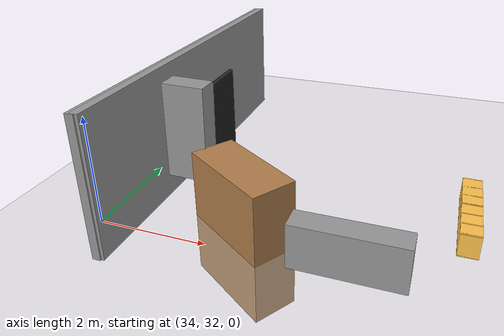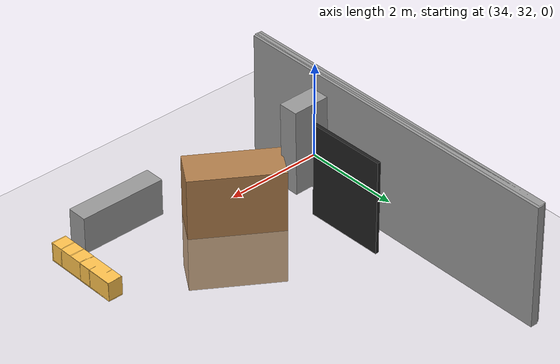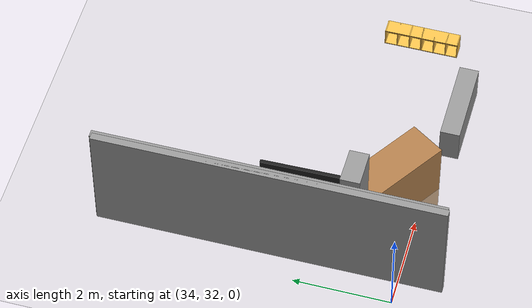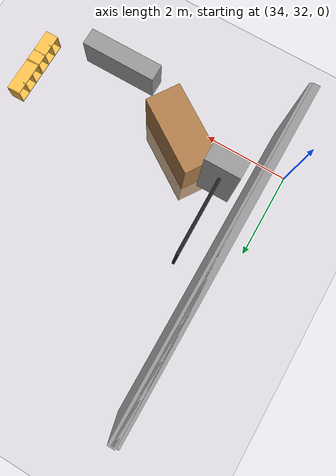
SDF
<sdf version="1.6">
 <world name="default">
  <model name="ground_plane">
   <static>1</static>
   <link name="link">
    <collision name="collision">
     <geometry><plane><normal>0 0 1</normal><size>100 100</size></plane></geometry>
     <surface><friction><ode><mu>100</mu><mu2>50</mu2></ode></friction></surface>
    </collision>
    <visual name="visual">
     <cast_shadows>0</cast_shadows>
     <geometry><plane><normal>0 0 1</normal><size>100 100</size></plane></geometry>
     <material>
      <script><uri>file://media/materials/scripts/gazebo.material</uri><name>Gazebo/Grey</name></script>
     </material>
    </visual>
   </link>
  </model>
  <model name="CVSSP">
   <pose>23.8714 24.094 0 0 -0 0</pose>
   <link name="Wall_53">
    <collision name="Wall_53_Collision">
     <geometry><box><size>7.09358 0.15 2.5</size></box></geometry>
     <pose>0 0 1.25 0 -0 0</pose>
    </collision>
    <visual name="Wall_53_Visual">
     <pose>0 0 1.25 0 -0 0</pose>
     <geometry><box><size>7.09358 0.15 2.5</size></box></geometry>
     <material>
      <script><uri>file://media/materials/scripts/gazebo.material</uri><name>Gazebo/Grey</name></script>
      <ambient>1 1 1 1</ambient>
     </material>
    </visual>
    <pose>10.7501 10.5821 0 0 0 -1.5708</pose>
   </link>
   <link name="Wall_60">
    <collision name="Wall_60_Collision">
     <geometry><box><size>7.09041 0.15 2.5</size></box></geometry>
     <pose>0 0 1.25 0 -0 0</pose>
    </collision>
    <visual name="Wall_60_Visual">
     <pose>0 0 1.25 0 -0 0</pose>
     <geometry><box><size>7.09041 0.15 2.5</size></box></geometry>
     <material>
      <script><uri>file://media/materials/scripts/gazebo.material</uri><name>Gazebo/Grey</name></script>
      <ambient>0.588235 0.588235 0.588235 1</ambient>
     </material>
    </visual>
    <pose>10.6949 10.5553 0 0 0 -1.57007</pose>
   </link>
   <static>1</static>
  </model>
  <model name="plastic_box_0_clone_0_clone">
   <link name="Wall">
    <pose>0 0 0.1985 0 -0 0</pose>
    <inertial>
     <mass>5</mass>
     <inertia><ixx>0.1022</ixx><iyy>0.4107</iyy><izz>0.3815</izz><ixy>0</ixy><ixz>0</ixz><iyz>0</iyz></inertia>
    </inertial>
    <gravity>0</gravity>
    <visual name="Wall_Visual">
     <geometry><box><size>1.75 0.4 0.75</size></box></geometry>
     <material>
      <script><uri>file://media/materials/scripts/gazebo.material</uri><name>Gazebo/Grey</name></script>
      <ambient>1 1 1 1</ambient>
      <shader type="pixel"><normal_map>__default__</normal_map></shader>
      <diffuse>0.7 0.7 0.7 1</diffuse>
      <specular>0.01 0.01 0.01 1</specular>
      <emissive>0 0 0 1</emissive>
     </material>
    </visual>
    <collision name="Wall_Collision">
     <geometry><box><size>1.75 0.4 0.75</size></box></geometry>
     <surface>
      <friction>
       <ode><mu>1</mu><mu2>1</mu2><fdir1>0 0 0</fdir1><slip1>0</slip1><slip2>0</slip2></ode>
       <torsional>
        <coefficient>1</coefficient>
        <patch_radius>0</patch_radius>
        <surface_radius>0</surface_radius>
        <use_patch_radius>1</use_patch_radius>
        <ode><slip>0</slip></ode>
       </torsional>
      </friction>
      <bounce><restitution_coefficient>0</restitution_coefficient><threshold>1e+06</threshold></bounce>
      <contact>
       <collide_without_contact>0</collide_without_contact>
       <collide_without_contact_bitmask>1</collide_without_contact_bitmask>
       <collide_bitmask>1</collide_bitmask>
       <ode>
        <soft_cfm>0</soft_cfm>
        <soft_erp>0.2</soft_erp>
        <kp>1e+13</kp>
        <kd>1</kd>
        <max_vel>0.01</max_vel>
        <min_depth>0</min_depth>
       </ode>
       <bullet>
        <split_impulse>1</split_impulse>
        <split_impulse_penetration_threshold>-0.01</split_impulse_penetration_threshold>
        <soft_cfm>0</soft_cfm>
        <soft_erp>0.2</soft_erp>
        <kp>1e+13</kp>
        <kd>1</kd>
       </bullet>
      </contact>
     </surface>
    </collision>
   </link>
   <static>1</static>
   <pose>38.4239 31.7068 0.519923 0 -0 0</pose>
  </model>
  <model name="plastic_box_0_clone_0_clone_clone">
   <link name="Wall">
    <pose>0 0 0.1985 0 -0 0</pose>
    <inertial>
     <mass>5</mass>
     <inertia><ixx>0.1022</ixx><iyy>0.4107</iyy><izz>0.3815</izz><ixy>0</ixy><ixz>0</ixz><iyz>0</iyz></inertia>
    </inertial>
    <gravity>0</gravity>
    <visual name="Wall_Visual">
     <geometry><box><size>1.75 0.4 0.75</size></box></geometry>
     <material>
      <script><uri>file://media/materials/scripts/gazebo.material</uri><name>Gazebo/Grey</name></script>
      <ambient>1 1 1 1</ambient>
      <shader type="pixel"><normal_map>__default__</normal_map></shader>
      <diffuse>0.7 0.7 0.7 1</diffuse>
      <specular>0.01 0.01 0.01 1</specular>
      <emissive>0 0 0 1</emissive>
     </material>
    </visual>
    <collision name="Wall_Collision">
     <geometry><box><size>1.75 0.4 0.75</size></box></geometry>
     <surface>
      <friction>
       <ode><mu>1</mu><mu2>1</mu2><fdir1>0 0 0</fdir1><slip1>0</slip1><slip2>0</slip2></ode>
       <torsional>
        <coefficient>1</coefficient>
        <patch_radius>0</patch_radius>
        <surface_radius>0</surface_radius>
        <use_patch_radius>1</use_patch_radius>
        <ode><slip>0</slip></ode>
       </torsional>
      </friction>
      <bounce><restitution_coefficient>0</restitution_coefficient><threshold>1e+06</threshold></bounce>
      <contact>
       <collide_without_contact>0</collide_without_contact>
       <collide_without_contact_bitmask>1</collide_without_contact_bitmask>
       <collide_bitmask>1</collide_bitmask>
       <ode>
        <soft_cfm>0</soft_cfm>
        <soft_erp>0.2</soft_erp>
        <kp>1e+13</kp>
        <kd>1</kd>
        <max_vel>0.01</max_vel>
        <min_depth>0</min_depth>
       </ode>
       <bullet>
        <split_impulse>1</split_impulse>
        <split_impulse_penetration_threshold>-0.01</split_impulse_penetration_threshold>
        <soft_cfm>0</soft_cfm>
        <soft_erp>0.2</soft_erp>
        <kp>1e+13</kp>
        <kd>1</kd>
       </bullet>
      </contact>
     </surface>
    </collision>
   </link>
   <static>1</static>
   <pose>35.4688 33.117 1.47097 0 -1.55363 0</pose>
  </model>
  <model name="ply_wood_desk">
   <link name="link">
    <pose>0 0 0.05 0 -0 0</pose>
    <inertial>
     <mass>0.5167</mass>
     <inertia>
      <ixx>0.00086117</ixx>
      <ixy>0</ixy>
      <ixz>0</ixz>
      <iyy>0.00086117</iyy>
      <iyz>0</iyz>
      <izz>0.00086117</izz>
     </inertia>
    </inertial>
    <visual name="visual">
     <geometry><box><size>1.8 0.8 2.4</size></box></geometry>
     <material>
      <script><uri>file://media/materials/scripts/gazebo.material</uri><name>Gazebo/Wood</name></script>
      <shader type="pixel"><normal_map>__default__</normal_map></shader>
      <ambient>1 1 1 1</ambient>
      <diffuse>1 1 1 1</diffuse>
      <specular>0.2 0.2 0.2 1</specular>
      <emissive>0 0 0 1</emissive>
     </material>
    </visual>
    <collision name="collision">
     <geometry><box><size>0.1 0.1 0.1</size></box></geometry>
     <surface>
      <friction>
       <ode><mu>1</mu><mu2>1</mu2><fdir1>0 0 0</fdir1><slip1>0</slip1><slip2>0</slip2></ode>
       <torsional>
        <coefficient>1</coefficient>
        <patch_radius>0</patch_radius>
        <surface_radius>0.01</surface_radius>
        <use_patch_radius>0</use_patch_radius>
        <ode><slip>0</slip></ode>
       </torsional>
      </friction>
      <bounce><restitution_coefficient>0</restitution_coefficient><threshold>1e+06</threshold></bounce>
      <contact>
       <collide_without_contact>0</collide_without_contact>
       <collide_without_contact_bitmask>1</collide_without_contact_bitmask>
       <collide_bitmask>1</collide_bitmask>
       <ode>
        <soft_cfm>0</soft_cfm>
        <soft_erp>0.2</soft_erp>
        <kp>100000</kp>
        <kd>100</kd>
        <max_vel>100</max_vel>
        <min_depth>0.001</min_depth>
       </ode>
       <bullet>
        <split_impulse>1</split_impulse>
        <split_impulse_penetration_threshold>-0.01</split_impulse_penetration_threshold>
        <soft_cfm>0</soft_cfm>
        <soft_erp>0.2</soft_erp>
        <kp>100000</kp>
        <kd>100</kd>
       </bullet>
      </contact>
     </surface>
    </collision>
   </link>
   <static>1</static>
   <pose>36.4474 32.5736 -0 0 0 -0.58099</pose>
  </model>
  <model name="metal_door_wide_clone">
   <link name="link">
    <inertial>
     <mass>1</mass>
     <inertia>
      <ixx>0.166667</ixx>
      <ixy>0</ixy>
      <ixz>0</ixz>
      <iyy>0.166667</iyy>
      <iyz>0</iyz>
      <izz>0.166667</izz>
     </inertia>
    </inertial>
    <gravity>0</gravity>
    <visual name="visual">
     <geometry><box><size>0.0684083 1.61603 1.94787</size></box></geometry>
     <material>
      <script><name>Gazebo/Black</name><uri>file://media/materials/scripts/gazebo.material</uri></script>
      <shader type="pixel"><normal_map>__default__</normal_map></shader>
      <ambient>0.01 0.001 0.001 1</ambient>
      <diffuse>0.7 0.7 0.7 1</diffuse>
      <specular>0.01 0.01 0.01 1</specular>
      <emissive>0 0 0 1</emissive>
     </material>
    </visual>
    <collision name="collision">
     <geometry><box><size>0.0684083 1.61603 1.94787</size></box></geometry>
     <surface>
      <friction>
       <ode><mu>1</mu><mu2>1</mu2><fdir1>0 0 0</fdir1><slip1>0</slip1><slip2>0</slip2></ode>
       <torsional>
        <coefficient>1</coefficient>
        <patch_radius>0</patch_radius>
        <surface_radius>0</surface_radius>
        <use_patch_radius>1</use_patch_radius>
        <ode><slip>0</slip></ode>
       </torsional>
      </friction>
      <bounce><restitution_coefficient>0</restitution_coefficient><threshold>1e+06</threshold></bounce>
      <contact>
       <collide_without_contact>0</collide_without_contact>
       <collide_without_contact_bitmask>1</collide_without_contact_bitmask>
       <collide_bitmask>1</collide_bitmask>
       <ode>
        <soft_cfm>0</soft_cfm>
        <soft_erp>0.2</soft_erp>
        <kp>1e+13</kp>
        <kd>1</kd>
        <max_vel>0.01</max_vel>
        <min_depth>0</min_depth>
       </ode>
       <bullet>
        <split_impulse>1</split_impulse>
        <split_impulse_penetration_threshold>-0.01</split_impulse_penetration_threshold>
        <soft_cfm>0</soft_cfm>
        <soft_erp>0.2</soft_erp>
        <kp>1e+13</kp>
        <kd>1</kd>
       </bullet>
      </contact>
     </surface>
    </collision>
   </link>
   <static>1</static>
   <pose>35.2438 34.1793 1.00357 -0.00287 -0.001978 0.014033</pose>
  </model>
  <model name="Wall_Cabinet_15x30_clone_0">
   <pose>39.9863 33.2264 0.720163 0 -0 0</pose>
   <link name="Wall_0">
    <pose>0 0.374 0.192 0 -0 0</pose>
    <inertial>
     <mass>0.9882</mass>
     <inertia><ixx>0.0072</ixx><iyy>0.0194</iyy><izz>0.0122</izz><ixy>0</ixy><ixz>0</ixz><iyz>0</iyz></inertia>
    </inertial>
    <collision name="Wall_0_Collision"><geometry><box><size>0.296 0.02 0.384</size></box></geometry></collision>
    <visual name="Wall_0_Visual">
     <geometry><box><size>0.296 0.02 0.384</size></box></geometry>
     <material>
      <script><uri>file://media/materials/scripts/gazebo.material</uri><name>Gazebo/Grey</name></script>
      <ambient>1 0.764706 0.305882 1</ambient>
     </material>
    </visual>
   </link>
   <joint name="0_2" type="fixed">
    <pose>0 0 0.192 0 -0 0</pose>
    <parent>Wall_2</parent>
    <child>Wall_0</child>
    <axis>
     <xyz>0 0 1</xyz>
     <use_parent_model_frame>0</use_parent_model_frame>
     <limit><lower>-1e+16</lower><upper>1e+16</upper></limit>
    </axis>
   </joint>
   <joint name="0_4" type="fixed">
    <pose>0 0 -0.192 0 -0 0</pose>
    <parent>Wall_4</parent>
    <child>Wall_0</child>
    <axis>
     <xyz>0 0 1</xyz>
     <use_parent_model_frame>0</use_parent_model_frame>
     <limit><lower>-1e+16</lower><upper>1e+16</upper></limit>
    </axis>
   </joint>
   <joint name="0_15" type="fixed">
    <pose>0.148 0 0 0 -0 0</pose>
    <parent>Wall_15</parent>
    <child>Wall_0</child>
    <axis>
     <xyz>1 0 0</xyz>
     <use_parent_model_frame>0</use_parent_model_frame>
     <limit><lower>-1e+16</lower><upper>1e+16</upper></limit>
    </axis>
   </joint>
   <link name="Wall_11">
    <pose>0 -0.132768 0.192 0 -0 0</pose>
    <inertial>
     <mass>0.9882</mass>
     <inertia><ixx>0.0072</ixx><iyy>0.0194</iyy><izz>0.0122</izz><ixy>0</ixy><ixz>0</ixz><iyz>0</iyz></inertia>
    </inertial>
    <collision name="Wall_11_Collision"><geometry><box><size>0.296 0.02 0.384</size></box></geometry></collision>
    <visual name="Wall_11_Visual">
     <geometry><box><size>0.296 0.02 0.384</size></box></geometry>
     <material>
      <script><uri>file://media/materials/scripts/gazebo.material</uri><name>Gazebo/Grey</name></script>
      <ambient>1 0.764706 0.305882 1</ambient>
     </material>
    </visual>
   </link>
   <joint name="11_2" type="fixed">
    <pose>0 0 0.192 0 -0 0</pose>
    <parent>Wall_2</parent>
    <child>Wall_11</child>
    <axis>
     <xyz>0 0 1</xyz>
     <use_parent_model_frame>0</use_parent_model_frame>
     <limit><lower>-1e+16</lower><upper>1e+16</upper></limit>
    </axis>
   </joint>
   <joint name="11_4" type="fixed">
    <pose>0 0 -0.192 0 -0 0</pose>
    <parent>Wall_4</parent>
    <child>Wall_11</child>
    <axis>
     <xyz>0 0 1</xyz>
     <use_parent_model_frame>0</use_parent_model_frame>
     <limit><lower>-1e+16</lower><upper>1e+16</upper></limit>
    </axis>
   </joint>
   <joint name="11_15" type="fixed">
    <pose>0.148 0 0 0 -0 0</pose>
    <parent>Wall_15</parent>
    <child>Wall_11</child>
    <axis>
     <xyz>1 0 0</xyz>
     <use_parent_model_frame>0</use_parent_model_frame>
     <limit><lower>-1e+16</lower><upper>1e+16</upper></limit>
    </axis>
   </joint>
   <link name="Wall_15">
    <pose>0.138 0 0.19 0 -0 0</pose>
    <inertial>
     <mass>2.5241</mass>
     <inertia><ixx>0.0305</ixx><iyy>0.1229</iyy><izz>0.1532</izz><ixy>0</ixy><ixz>0</ixz><iyz>0</iyz></inertia>
    </inertial>
    <collision name="Wall_15_Collision"><geometry><box><size>0.02 0.764 0.38</size></box></geometry></collision>
    <visual name="Wall_15_Visual">
     <geometry><box><size>0.02 0.764 0.38</size></box></geometry>
     <material>
      <script><uri>file://media/materials/scripts/gazebo.material</uri><name>Gazebo/Grey</name></script>
      <ambient>1 0.764706 0.305882 1</ambient>
     </material>
    </visual>
   </link>
   <joint name="15_2" type="fixed">
    <pose>0 0 0.19 0 -0 0</pose>
    <parent>Wall_2</parent>
    <child>Wall_15</child>
    <axis>
     <xyz>0 0 1</xyz>
     <use_parent_model_frame>0</use_parent_model_frame>
     <limit><lower>-1e+16</lower><upper>1e+16</upper></limit>
    </axis>
   </joint>
   <joint name="15_4" type="fixed">
    <pose>0 0 -0.19 0 -0 0</pose>
    <parent>Wall_4</parent>
    <child>Wall_15</child>
    <axis>
     <xyz>0 0 1</xyz>
     <use_parent_model_frame>0</use_parent_model_frame>
     <limit><lower>-1e+16</lower><upper>1e+16</upper></limit>
    </axis>
   </joint>
   <link name="Wall_2">
    <pose>0 0 0.374 0 -0 0</pose>
    <inertial>
     <mass>1.9765</mass>
     <inertia><ixx>0.0145</ixx><iyy>0.1116</iyy><izz>0.0972</izz><ixy>0</ixy><ixz>0</ixz><iyz>0</iyz></inertia>
    </inertial>
    <collision name="Wall_2_Collision"><geometry><box><size>0.296 0.768 0.02</size></box></geometry></collision>
    <visual name="Wall_2_Visual">
     <geometry><box><size>0.296 0.768 0.02</size></box></geometry>
     <material>
      <script><uri>file://media/materials/scripts/gazebo.material</uri><name>Gazebo/Grey</name></script>
      <ambient>1 0.764706 0.305882 1</ambient>
     </material>
    </visual>
   </link>
   <link name="Wall_4">
    <pose>0 0 0.01 0 -0 0</pose>
    <inertial>
     <mass>1.9765</mass>
     <inertia><ixx>0.0145</ixx><iyy>0.1116</iyy><izz>0.0972</izz><ixy>0</ixy><ixz>0</ixz><iyz>0</iyz></inertia>
    </inertial>
    <collision name="Wall_4_Collision"><geometry><box><size>0.296 0.768 0.02</size></box></geometry></collision>
    <visual name="Wall_4_Visual">
     <geometry><box><size>0.296 0.768 0.02</size></box></geometry>
     <material>
      <script><uri>file://media/materials/scripts/gazebo.material</uri><name>Gazebo/Grey</name></script>
      <ambient>1 0.764706 0.305882 1</ambient>
     </material>
    </visual>
    <pose>-0.181124 0 0 0 0 -1.5708</pose>
   </link>
   <link name="Wall_6">
    <pose>0 -0.374 0.192 0 -0 0</pose>
    <inertial>
     <mass>0.9882</mass>
     <inertia><ixx>0.0072</ixx><iyy>0.0194</iyy><izz>0.0122</izz><ixy>0</ixy><ixz>0</ixz><iyz>0</iyz></inertia>
    </inertial>
    <collision name="Wall_6_Collision"><geometry><box><size>0.296 0.02 0.384</size></box></geometry></collision>
    <visual name="Wall_6_Visual">
     <geometry><box><size>0.296 0.02 0.384</size></box></geometry>
     <material>
      <script><uri>file://media/materials/scripts/gazebo.material</uri><name>Gazebo/Grey</name></script>
      <ambient>1 0.764706 0.305882 1</ambient>
     </material>
    </visual>
   </link>
   <joint name="6_2" type="fixed">
    <pose>0 0 0.192 0 -0 0</pose>
    <parent>Wall_2</parent>
    <child>Wall_6</child>
    <axis>
     <xyz>0 0 1</xyz>
     <use_parent_model_frame>0</use_parent_model_frame>
     <limit><lower>-1e+16</lower><upper>1e+16</upper></limit>
    </axis>
   </joint>
   <joint name="6_4" type="fixed">
    <pose>0 0 -0.192 0 -0 0</pose>
    <parent>Wall_4</parent>
    <child>Wall_6</child>
    <axis>
     <xyz>0 0 1</xyz>
     <use_parent_model_frame>0</use_parent_model_frame>
     <limit><lower>-1e+16</lower><upper>1e+16</upper></limit>
    </axis>
   </joint>
   <joint name="6_15" type="fixed">
    <pose>0.148 0 0 0 -0 0</pose>
    <parent>Wall_15</parent>
    <child>Wall_6</child>
    <axis>
     <xyz>1 0 0</xyz>
     <use_parent_model_frame>0</use_parent_model_frame>
     <limit><lower>-1e+16</lower><upper>1e+16</upper></limit>
    </axis>
   </joint>
   <link name="Wall_8">
    <pose>0 0.120833 0.192 0 -0 0</pose>
    <inertial>
     <mass>0.9882</mass>
     <inertia><ixx>0.0072</ixx><iyy>0.0194</iyy><izz>0.0122</izz><ixy>0</ixy><ixz>0</ixz><iyz>0</iyz></inertia>
    </inertial>
    <collision name="Wall_8_Collision"><geometry><box><size>0.296 0.02 0.384</size></box></geometry></collision>
    <visual name="Wall_8_Visual">
     <geometry><box><size>0.296 0.02 0.384</size></box></geometry>
     <material>
      <script><uri>file://media/materials/scripts/gazebo.material</uri><name>Gazebo/Grey</name></script>
      <ambient>1 0.764706 0.305882 1</ambient>
     </material>
    </visual>
   </link>
   <joint name="8_2" type="fixed">
    <pose>0 0 0.192 0 -0 0</pose>
    <parent>Wall_2</parent>
    <child>Wall_8</child>
    <axis>
     <xyz>0 0 1</xyz>
     <use_parent_model_frame>0</use_parent_model_frame>
     <limit><lower>-1e+16</lower><upper>1e+16</upper></limit>
    </axis>
   </joint>
   <joint name="8_4" type="fixed">
    <pose>0 0 -0.192 0 -0 0</pose>
    <parent>Wall_4</parent>
    <child>Wall_8</child>
    <axis>
     <xyz>0 0 1</xyz>
     <use_parent_model_frame>0</use_parent_model_frame>
     <limit><lower>-1e+16</lower><upper>1e+16</upper></limit>
    </axis>
   </joint>
   <joint name="8_15" type="fixed">
    <pose>0.148 0 0 0 -0 0</pose>
    <parent>Wall_15</parent>
    <child>Wall_8</child>
    <axis>
     <xyz>1 0 0</xyz>
     <use_parent_model_frame>0</use_parent_model_frame>
     <limit><lower>-1e+16</lower><upper>1e+16</upper></limit>
    </axis>
   </joint>
   <static>1</static>
  </model>
  <model name="Wall_Cabinet_15x30_clone_1">
   <pose>39.9832 32.4615 0.720413 0 -0 0</pose>
   <link name="Wall_0">
    <pose>0 0.374 0.192 0 -0 0</pose>
    <inertial>
     <mass>0.9882</mass>
     <inertia><ixx>0.0072</ixx><iyy>0.0194</iyy><izz>0.0122</izz><ixy>0</ixy><ixz>0</ixz><iyz>0</iyz></inertia>
    </inertial>
    <collision name="Wall_0_Collision"><geometry><box><size>0.296 0.02 0.384</size></box></geometry></collision>
    <visual name="Wall_0_Visual">
     <geometry><box><size>0.296 0.02 0.384</size></box></geometry>
     <material>
      <script><uri>file://media/materials/scripts/gazebo.material</uri><name>Gazebo/Grey</name></script>
      <ambient>1 0.764706 0.305882 1</ambient>
     </material>
    </visual>
   </link>
   <joint name="0_2" type="fixed">
    <pose>0 0 0.192 0 -0 0</pose>
    <parent>Wall_2</parent>
    <child>Wall_0</child>
    <axis>
     <xyz>0 0 1</xyz>
     <use_parent_model_frame>0</use_parent_model_frame>
     <limit><lower>-1e+16</lower><upper>1e+16</upper></limit>
    </axis>
   </joint>
   <joint name="0_4" type="fixed">
    <pose>0 0 -0.192 0 -0 0</pose>
    <parent>Wall_4</parent>
    <child>Wall_0</child>
    <axis>
     <xyz>0 0 1</xyz>
     <use_parent_model_frame>0</use_parent_model_frame>
     <limit><lower>-1e+16</lower><upper>1e+16</upper></limit>
    </axis>
   </joint>
   <joint name="0_15" type="fixed">
    <pose>0.148 0 0 0 -0 0</pose>
    <parent>Wall_15</parent>
    <child>Wall_0</child>
    <axis>
     <xyz>1 0 0</xyz>
     <use_parent_model_frame>0</use_parent_model_frame>
     <limit><lower>-1e+16</lower><upper>1e+16</upper></limit>
    </axis>
   </joint>
   <link name="Wall_11">
    <pose>0 -0.132768 0.192 0 -0 0</pose>
    <inertial>
     <mass>0.9882</mass>
     <inertia><ixx>0.0072</ixx><iyy>0.0194</iyy><izz>0.0122</izz><ixy>0</ixy><ixz>0</ixz><iyz>0</iyz></inertia>
    </inertial>
    <collision name="Wall_11_Collision"><geometry><box><size>0.296 0.02 0.384</size></box></geometry></collision>
    <visual name="Wall_11_Visual">
     <geometry><box><size>0.296 0.02 0.384</size></box></geometry>
     <material>
      <script><uri>file://media/materials/scripts/gazebo.material</uri><name>Gazebo/Grey</name></script>
      <ambient>1 0.764706 0.305882 1</ambient>
     </material>
    </visual>
   </link>
   <joint name="11_2" type="fixed">
    <pose>0 0 0.192 0 -0 0</pose>
    <parent>Wall_2</parent>
    <child>Wall_11</child>
    <axis>
     <xyz>0 0 1</xyz>
     <use_parent_model_frame>0</use_parent_model_frame>
     <limit><lower>-1e+16</lower><upper>1e+16</upper></limit>
    </axis>
   </joint>
   <joint name="11_4" type="fixed">
    <pose>0 0 -0.192 0 -0 0</pose>
    <parent>Wall_4</parent>
    <child>Wall_11</child>
    <axis>
     <xyz>0 0 1</xyz>
     <use_parent_model_frame>0</use_parent_model_frame>
     <limit><lower>-1e+16</lower><upper>1e+16</upper></limit>
    </axis>
   </joint>
   <joint name="11_15" type="fixed">
    <pose>0.148 0 0 0 -0 0</pose>
    <parent>Wall_15</parent>
    <child>Wall_11</child>
    <axis>
     <xyz>1 0 0</xyz>
     <use_parent_model_frame>0</use_parent_model_frame>
     <limit><lower>-1e+16</lower><upper>1e+16</upper></limit>
    </axis>
   </joint>
   <link name="Wall_15">
    <pose>0.138 0 0.19 0 -0 0</pose>
    <inertial>
     <mass>2.5241</mass>
     <inertia><ixx>0.0305</ixx><iyy>0.1229</iyy><izz>0.1532</izz><ixy>0</ixy><ixz>0</ixz><iyz>0</iyz></inertia>
    </inertial>
    <collision name="Wall_15_Collision"><geometry><box><size>0.02 0.764 0.38</size></box></geometry></collision>
    <visual name="Wall_15_Visual">
     <geometry><box><size>0.02 0.764 0.38</size></box></geometry>
     <material>
      <script><uri>file://media/materials/scripts/gazebo.material</uri><name>Gazebo/Grey</name></script>
      <ambient>1 0.764706 0.305882 1</ambient>
     </material>
    </visual>
   </link>
   <joint name="15_2" type="fixed">
    <pose>0 0 0.19 0 -0 0</pose>
    <parent>Wall_2</parent>
    <child>Wall_15</child>
    <axis>
     <xyz>0 0 1</xyz>
     <use_parent_model_frame>0</use_parent_model_frame>
     <limit><lower>-1e+16</lower><upper>1e+16</upper></limit>
    </axis>
   </joint>
   <joint name="15_4" type="fixed">
    <pose>0 0 -0.19 0 -0 0</pose>
    <parent>Wall_4</parent>
    <child>Wall_15</child>
    <axis>
     <xyz>0 0 1</xyz>
     <use_parent_model_frame>0</use_parent_model_frame>
     <limit><lower>-1e+16</lower><upper>1e+16</upper></limit>
    </axis>
   </joint>
   <link name="Wall_2">
    <pose>0 0 0.374 0 -0 0</pose>
    <inertial>
     <mass>1.9765</mass>
     <inertia><ixx>0.0145</ixx><iyy>0.1116</iyy><izz>0.0972</izz><ixy>0</ixy><ixz>0</ixz><iyz>0</iyz></inertia>
    </inertial>
    <collision name="Wall_2_Collision"><geometry><box><size>0.296 0.768 0.02</size></box></geometry></collision>
    <visual name="Wall_2_Visual">
     <geometry><box><size>0.296 0.768 0.02</size></box></geometry>
     <material>
      <script><uri>file://media/materials/scripts/gazebo.material</uri><name>Gazebo/Grey</name></script>
      <ambient>1 0.764706 0.305882 1</ambient>
     </material>
    </visual>
   </link>
   <link name="Wall_4">
    <pose>0 0 0.01 0 -0 0</pose>
    <inertial>
     <mass>1.9765</mass>
     <inertia><ixx>0.0145</ixx><iyy>0.1116</iyy><izz>0.0972</izz><ixy>0</ixy><ixz>0</ixz><iyz>0</iyz></inertia>
    </inertial>
    <collision name="Wall_4_Collision"><geometry><box><size>0.296 0.768 0.02</size></box></geometry></collision>
    <visual name="Wall_4_Visual">
     <geometry><box><size>0.296 0.768 0.02</size></box></geometry>
     <material>
      <script><uri>file://media/materials/scripts/gazebo.material</uri><name>Gazebo/Grey</name></script>
      <ambient>1 0.764706 0.305882 1</ambient>
     </material>
    </visual>
    <pose>-0.181124 0 0 0 0 -1.5708</pose>
   </link>
   <link name="Wall_6">
    <pose>0 -0.374 0.192 0 -0 0</pose>
    <inertial>
     <mass>0.9882</mass>
     <inertia><ixx>0.0072</ixx><iyy>0.0194</iyy><izz>0.0122</izz><ixy>0</ixy><ixz>0</ixz><iyz>0</iyz></inertia>
    </inertial>
    <collision name="Wall_6_Collision"><geometry><box><size>0.296 0.02 0.384</size></box></geometry></collision>
    <visual name="Wall_6_Visual">
     <geometry><box><size>0.296 0.02 0.384</size></box></geometry>
     <material>
      <script><uri>file://media/materials/scripts/gazebo.material</uri><name>Gazebo/Grey</name></script>
      <ambient>1 0.764706 0.305882 1</ambient>
     </material>
    </visual>
   </link>
   <joint name="6_2" type="fixed">
    <pose>0 0 0.192 0 -0 0</pose>
    <parent>Wall_2</parent>
    <child>Wall_6</child>
    <axis>
     <xyz>0 0 1</xyz>
     <use_parent_model_frame>0</use_parent_model_frame>
     <limit><lower>-1e+16</lower><upper>1e+16</upper></limit>
    </axis>
   </joint>
   <joint name="6_4" type="fixed">
    <pose>0 0 -0.192 0 -0 0</pose>
    <parent>Wall_4</parent>
    <child>Wall_6</child>
    <axis>
     <xyz>0 0 1</xyz>
     <use_parent_model_frame>0</use_parent_model_frame>
     <limit><lower>-1e+16</lower><upper>1e+16</upper></limit>
    </axis>
   </joint>
   <joint name="6_15" type="fixed">
    <pose>0.148 0 0 0 -0 0</pose>
    <parent>Wall_15</parent>
    <child>Wall_6</child>
    <axis>
     <xyz>1 0 0</xyz>
     <use_parent_model_frame>0</use_parent_model_frame>
     <limit><lower>-1e+16</lower><upper>1e+16</upper></limit>
    </axis>
   </joint>
   <link name="Wall_8">
    <pose>0 0.120833 0.192 0 -0 0</pose>
    <inertial>
     <mass>0.9882</mass>
     <inertia><ixx>0.0072</ixx><iyy>0.0194</iyy><izz>0.0122</izz><ixy>0</ixy><ixz>0</ixz><iyz>0</iyz></inertia>
    </inertial>
    <collision name="Wall_8_Collision"><geometry><box><size>0.296 0.02 0.384</size></box></geometry></collision>
    <visual name="Wall_8_Visual">
     <geometry><box><size>0.296 0.02 0.384</size></box></geometry>
     <material>
      <script><uri>file://media/materials/scripts/gazebo.material</uri><name>Gazebo/Grey</name></script>
      <ambient>1 0.764706 0.305882 1</ambient>
     </material>
    </visual>
   </link>
   <joint name="8_2" type="fixed">
    <pose>0 0 0.192 0 -0 0</pose>
    <parent>Wall_2</parent>
    <child>Wall_8</child>
    <axis>
     <xyz>0 0 1</xyz>
     <use_parent_model_frame>0</use_parent_model_frame>
     <limit><lower>-1e+16</lower><upper>1e+16</upper></limit>
    </axis>
   </joint>
   <joint name="8_4" type="fixed">
    <pose>0 0 -0.192 0 -0 0</pose>
    <parent>Wall_4</parent>
    <child>Wall_8</child>
    <axis>
     <xyz>0 0 1</xyz>
     <use_parent_model_frame>0</use_parent_model_frame>
     <limit><lower>-1e+16</lower><upper>1e+16</upper></limit>
    </axis>
   </joint>
   <joint name="8_15" type="fixed">
    <pose>0.148 0 0 0 -0 0</pose>
    <parent>Wall_15</parent>
    <child>Wall_8</child>
    <axis>
     <xyz>1 0 0</xyz>
     <use_parent_model_frame>0</use_parent_model_frame>
     <limit><lower>-1e+16</lower><upper>1e+16</upper></limit>
    </axis>
   </joint>
   <static>1</static>
  </model>
 </world>
</sdf>
